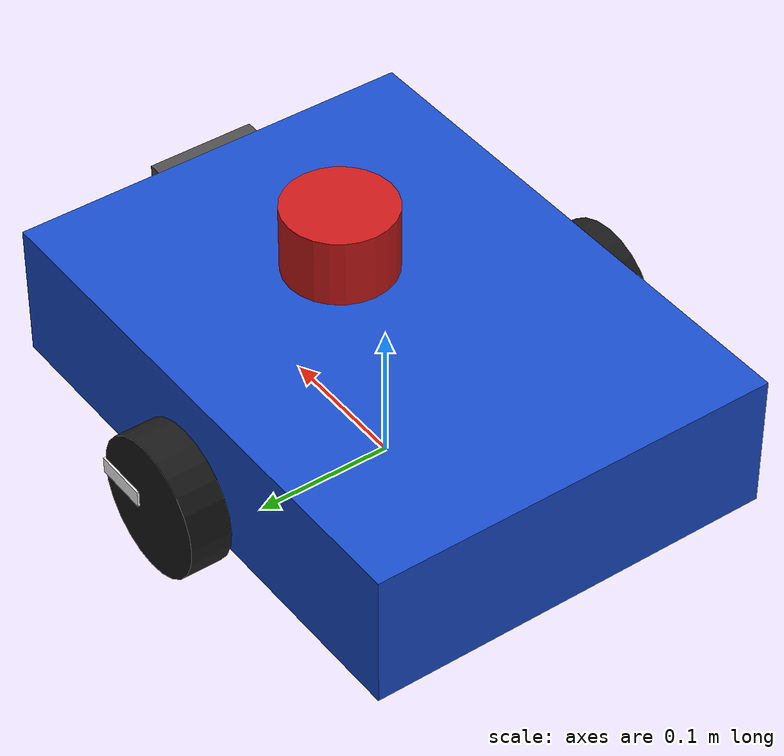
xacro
<?xml version="1.0"?>
<robot xmlns:xacro="http://www.ros.org/wiki/xacro" name="diff_bot">

  <xacro:property name="PI" value="3.14159265"/>
  <xacro:property name="body_l" value="0.40"/>
  <xacro:property name="body_w" value="0.30"/>
  <xacro:property name="body_h" value="0.10"/>
  <xacro:property name="wheel_r" value="0.05"/>
  <xacro:property name="wheel_w" value="0.03"/>
  <xacro:property name="wheel_sep" value="0.34"/>

  <xacro:macro name="box_inertia" params="m x y z">
    <inertial>
      <mass value="${m}"/>
      <inertia ixx="${m*(y*y+z*z)/12}" ixy="0" ixz="0" iyy="${m*(x*x+z*z)/12}" iyz="0" izz="${m*(x*x+y*y)/12}"/>
    </inertial>
  </xacro:macro>

  <xacro:macro name="wheel" params="name y">
    <link name="${name}_wheel">
      <visual>
        <origin rpy="${PI/2} 0 0"/>
        <geometry><cylinder radius="${wheel_r}" length="${wheel_w}"/></geometry>
        <material name="black"><color rgba="0.1 0.1 0.1 1"/></material>
      </visual>
      <visual name="stripe">
        <origin xyz="${wheel_r*0.6} 0 0"/>
        <geometry><box size="${wheel_r*0.8} ${wheel_w*1.1} 0.012"/></geometry>
        <material name="white"><color rgba="1 1 1 1"/></material>
      </visual>
      <collision>
        <origin rpy="${PI/2} 0 0"/>
        <geometry><cylinder radius="${wheel_r}" length="${wheel_w}"/></geometry>
      </collision>
      <inertial>
        <origin rpy="${PI/2} 0 0"/>
        <mass value="0.5"/>
        <inertia ixx="0.0005" ixy="0" ixz="0" iyy="0.0005" iyz="0" izz="0.0006"/>
      </inertial>
    </link>
    <joint name="${name}_wheel_joint" type="continuous">
      <parent link="base_link"/>
      <child link="${name}_wheel"/>
      <origin xyz="0 ${y} -0.025"/>
      <axis xyz="0 1 0"/>
    </joint>
    <gazebo reference="${name}_wheel">
      <mu1>1.0</mu1><mu2>1.0</mu2><kp>500000.0</kp><kd>10.0</kd>
    </gazebo>
  </xacro:macro>

  <xacro:macro name="caster" params="name x">
    <link name="${name}_caster">
      <visual><geometry><sphere radius="0.025"/></geometry></visual>
      <collision><geometry><sphere radius="0.025"/></geometry></collision>
      <inertial>
        <mass value="0.1"/>
        <inertia ixx="0.00001" ixy="0" ixz="0" iyy="0.00001" iyz="0" izz="0.00001"/>
      </inertial>
    </link>
    <joint name="${name}_caster_joint" type="fixed">
      <parent link="base_link"/>
      <child link="${name}_caster"/>
      <origin xyz="${x} 0 -0.05"/>
    </joint>
    <gazebo reference="${name}_caster">
      <mu1>0.0</mu1><mu2>0.0</mu2>
    </gazebo>
  </xacro:macro>

  <link name="base_footprint"/>
  <joint name="base_footprint_joint" type="fixed">
    <parent link="base_footprint"/>
    <child link="base_link"/>
    <origin xyz="0 0 0.075"/>
  </joint>

  <link name="base_link">
    <visual>
      <geometry><box size="${body_l} ${body_w} ${body_h}"/></geometry>
      <material name="blue"><color rgba="0.1 0.3 0.8 1"/></material>
    </visual>
    <collision>
      <geometry><box size="${body_l} ${body_w} ${body_h}"/></geometry>
    </collision>
    <xacro:box_inertia m="5.0" x="${body_l}" y="${body_w}" z="${body_h}"/>
  </link>

  <xacro:wheel name="left"  y="${wheel_sep/2}"/>
  <xacro:wheel name="right" y="${-wheel_sep/2}"/>
  <xacro:caster name="front" x="0.15"/>
  <xacro:caster name="rear"  x="-0.15"/>

  <link name="lidar_link">
    <visual>
      <geometry><cylinder radius="0.04" length="0.05"/></geometry>
      <material name="red"><color rgba="0.8 0.1 0.1 1"/></material>
    </visual>
    <collision><geometry><cylinder radius="0.04" length="0.05"/></geometry></collision>
    <inertial>
      <mass value="0.1"/>
      <inertia ixx="0.0001" ixy="0" ixz="0" iyy="0.0001" iyz="0" izz="0.0001"/>
    </inertial>
  </link>
  <joint name="lidar_joint" type="fixed">
    <parent link="base_link"/>
    <child link="lidar_link"/>
    <origin xyz="0.05 0 0.075"/>
  </joint>

  <link name="camera_link">
    <visual>
      <geometry><box size="0.03 0.08 0.03"/></geometry>
      <material name="gray"><color rgba="0.3 0.3 0.3 1"/></material>
    </visual>
    <collision><geometry><box size="0.03 0.08 0.03"/></geometry></collision>
    <inertial>
      <mass value="0.05"/>
      <inertia ixx="0.00001" ixy="0" ixz="0" iyy="0.00001" iyz="0" izz="0.00001"/>
    </inertial>
  </link>
  <joint name="camera_joint" type="fixed">
    <parent link="base_link"/>
    <child link="camera_link"/>
    <origin xyz="0.2 0 0.03"/>
  </joint>

  <link name="camera_optical_link"/>
  <joint name="camera_optical_joint" type="fixed">
    <parent link="camera_link"/>
    <child link="camera_optical_link"/>
    <origin rpy="${-PI/2} 0 ${-PI/2}"/>
  </joint>

  <gazebo reference="base_link"><material>Gazebo/Blue</material></gazebo>
  <gazebo reference="left_wheel"><material>Gazebo/Black</material></gazebo>
  <gazebo reference="right_wheel"><material>Gazebo/Black</material></gazebo>
  <gazebo reference="lidar_link"><material>Gazebo/Red</material></gazebo>
  <gazebo reference="camera_link"><material>Gazebo/Grey</material></gazebo>
  <gazebo reference="front_caster"><material>Gazebo/Orange</material></gazebo>
  <gazebo reference="rear_caster"><material>Gazebo/Orange</material></gazebo>

  <gazebo>
    <plugin name="diff_drive" filename="libgazebo_ros_diff_drive.so">
      <update_rate>50</update_rate>
      <left_joint>left_wheel_joint</left_joint>
      <right_joint>right_wheel_joint</right_joint>
      <wheel_separation>${wheel_sep}</wheel_separation>
      <wheel_diameter>${2*wheel_r}</wheel_diameter>
      <max_wheel_torque>20</max_wheel_torque>
      <max_wheel_acceleration>2.0</max_wheel_acceleration>
      <command_topic>cmd_vel</command_topic>
      <odometry_topic>odom</odometry_topic>
      <odometry_frame>odom</odometry_frame>
      <robot_base_frame>base_footprint</robot_base_frame>
      <publish_odom>true</publish_odom>
      <publish_odom_tf>true</publish_odom_tf>
      <publish_wheel_tf>true</publish_wheel_tf>
    </plugin>
  </gazebo>

  <gazebo reference="lidar_link">
    <sensor name="lidar" type="ray">
      <always_on>true</always_on>
      <visualize>false</visualize>
      <update_rate>10</update_rate>
      <ray>
        <scan>
          <horizontal>
            <samples>360</samples>
            <resolution>1</resolution>
            <min_angle>-3.14159</min_angle>
            <max_angle>3.14159</max_angle>
          </horizontal>
        </scan>
        <range>
          <min>0.12</min>
          <max>10.0</max>
          <resolution>0.01</resolution>
        </range>
        <noise>
          <type>gaussian</type>
          <mean>0.0</mean>
          <stddev>0.01</stddev>
        </noise>
      </ray>
      <plugin name="lidar_plugin" filename="libgazebo_ros_ray_sensor.so">
        <ros><remapping>~/out:=scan</remapping></ros>
        <output_type>sensor_msgs/LaserScan</output_type>
        <frame_name>lidar_link</frame_name>
      </plugin>
    </sensor>
  </gazebo>

  <gazebo reference="camera_link">
    <sensor name="depth_camera" type="depth">
      <always_on>true</always_on>
      <visualize>false</visualize>
      <update_rate>10</update_rate>
      <camera name="depth_cam">
        <horizontal_fov>1.047</horizontal_fov>
        <image>
          <width>160</width>
          <height>120</height>
          <format>R8G8B8</format>
        </image>
        <clip>
          <near>0.3</near>
          <far>8.0</far>
        </clip>
      </camera>
      <plugin name="depth_camera_plugin" filename="libgazebo_ros_camera.so">
        <camera_name>camera</camera_name>
        <frame_name>camera_optical_link</frame_name>
        <min_depth>0.3</min_depth>
        <max_depth>8.0</max_depth>
      </plugin>
    </sensor>
  </gazebo>

</robot>
